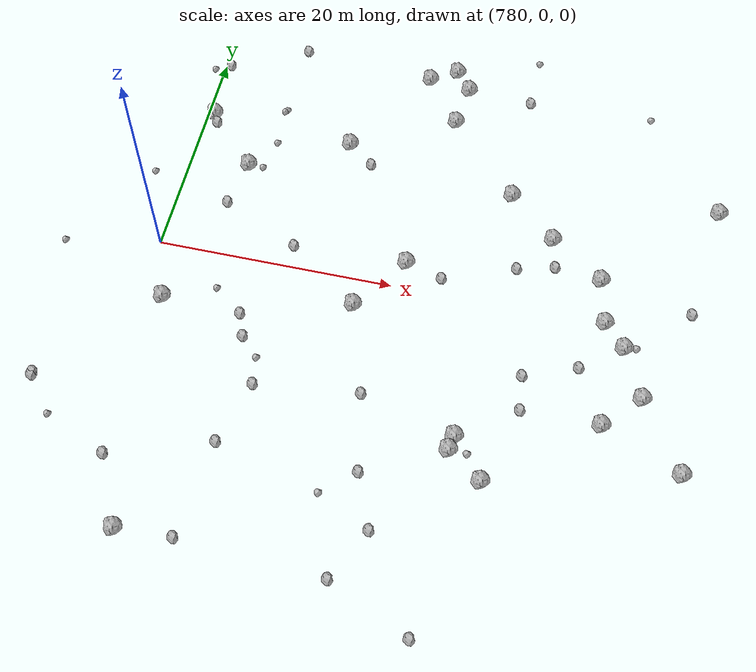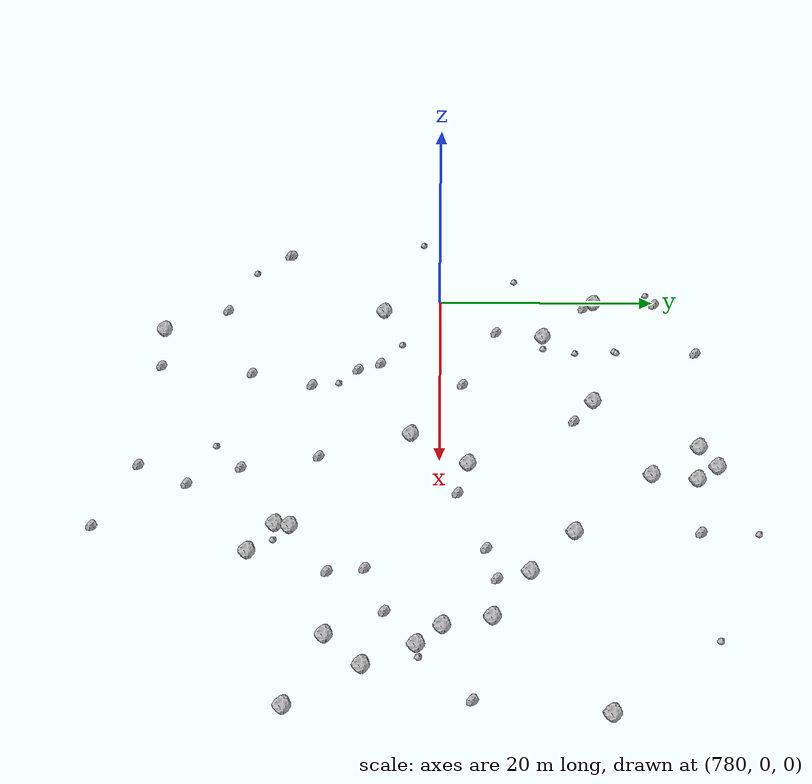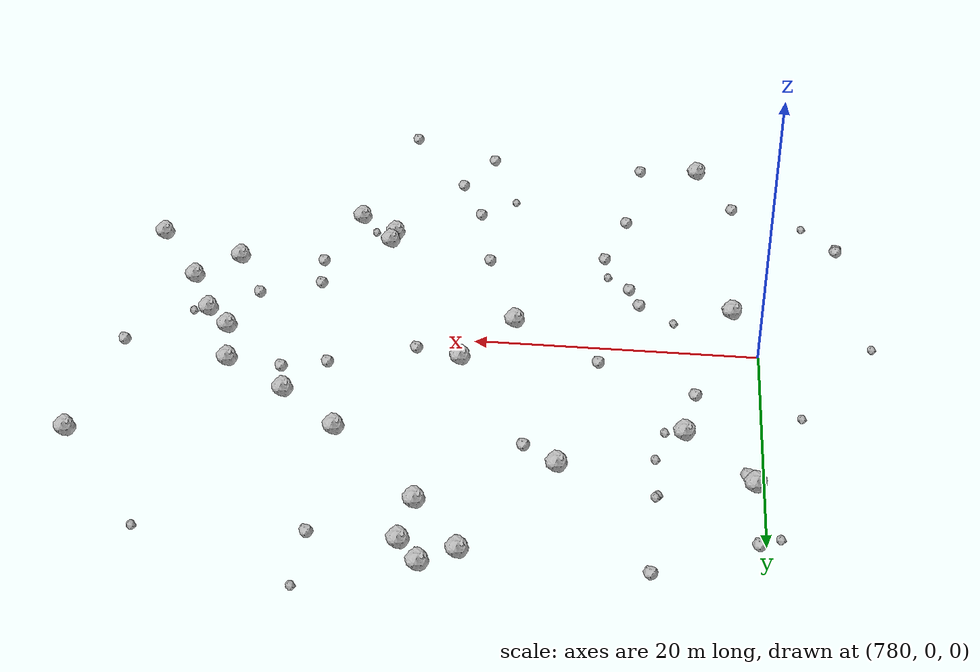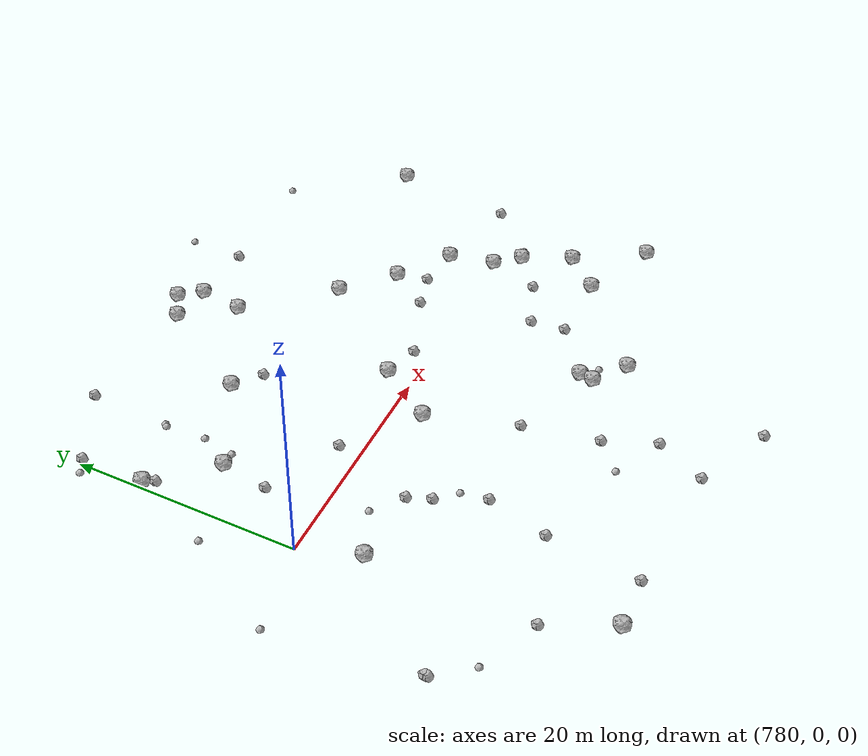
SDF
<sdf version="1.6">
 <world name="default">
  <include><uri>model://sun</uri></include>
  <model name="rock1_20_4">
   <include><uri>model://rock1</uri><pose>807.8251885628258 -12.503288451490942 0.5 0 0 0</pose></include>
  </model>
  <model name="rock1_20_5">
   <include><uri>model://rock1</uri><pose>798.7308575047086 22.42520328694191 0.5 0 0 0</pose></include>
  </model>
  <model name="rock1_20_6">
   <include><uri>model://rock1</uri><pose>800.7836327594883 2.401359715254671 0.5 0 0 0</pose></include>
  </model>
  <model name="rock1_20_7">
   <include><uri>model://rock1</uri><pose>812.4145815715328 7.360650762690717 0.5 0 0 0</pose></include>
  </model>
  <model name="rock1_20_8">
   <include><uri>model://rock1</uri><pose>810.5118588144919 -15.808117047848278 0.5 0 0 0</pose></include>
  </model>
  <model name="rock1_20_9">
   <include><uri>model://rock1</uri><pose>821.662245598696 -6.081286089101457 0.5 0 0 0</pose></include>
  </model>
  <model name="rock1_20_10">
   <include><uri>model://rock1</uri><pose>825.4167378654381 -11.93931517856521 0.5 0 0 0</pose></include>
  </model>
  <model name="rock1_20_11">
   <include><uri>model://rock1</uri><pose>802.4160137692612 21.932943546412417 0.5 0 0 0</pose></include>
  </model>
  <model name="rock1_20_12">
   <include><uri>model://rock1</uri><pose>784.4384957043653 -25.48952887905652 0.5 0 0 0</pose></include>
  </model>
  <model name="rock1_20_13">
   <include><uri>model://rock1</uri><pose>825.8917752590783 13.112850134659404 0.5 0 0 0</pose></include>
  </model>
  <model name="rock1_20_14">
   <include><uri>model://rock1</uri><pose>808.2465812958935 11.161290035560441 0.5 0 0 0</pose></include>
  </model>
  <model name="rock1_20_15">
   <include><uri>model://rock1</uri><pose>801.9447974708867 18.07258438209623 0.5 0 0 0</pose></include>
  </model>
  <model name="rock1_20_16">
   <include><uri>model://rock1</uri><pose>781.8170530121807 -5.217827327383141 0.5 0 0 0</pose></include>
  </model>
  <model name="rock1_20_17">
   <include><uri>model://rock1</uri><pose>816.9624875694711 4.195301404812504 0.5 0 0 0</pose></include>
  </model>
  <model name="rock1_20_18">
   <include><uri>model://rock1</uri><pose>793.2929757553794 13.581934600600917 0.5 0 0 0</pose></include>
  </model>
  <model name="rock1_20_19">
   <include><uri>model://rock1</uri><pose>800.9805422048406 23.788795342171426 0.5 0 0 0</pose></include>
  </model>
  <model name="rock1_20_20">
   <include><uri>model://rock1</uri><pose>797.3807596318325 -2.5631635274295412 0.5 0 0 0</pose></include>
  </model>
  <model name="rock1_20_21">
   <include><uri>model://rock1</uri><pose>780.5779361961754 14.334694959827232 0.5 0 0 0</pose></include>
  </model>
  <model name="rock1_20_22">
   <include><uri>model://rock1</uri><pose>817.8434681080306 0.18753175339897155 0.5 0 0 0</pose></include>
  </model>
  <model name="rock1_20_23">
   <include><uri>model://rock1</uri><pose>818.8284339953528 -9.091802010078538 0.5 0 0 0</pose></include>
  </model>
  <model name="rock1_20_24">
   <include><uri>model://rock1</uri><pose>819.6672748777657 -1.847038062434148 0.5 0 0 0</pose></include>
  </model>
  <model name="rock1_20_25">
   <include><uri>model://rock1</uri><pose>807.612204053263 -13.738059568396128 0.5 0 0 0</pose></include>
  </model>
  <model name="rock1_20_26">
   <include><uri>model://rock1</uri><pose>785.1156569726295 9.423704618615773 0.5 0 0 0</pose></include>
  </model>
  <model name="rock2_20_0">
   <include><uri>model://rock2</uri><pose>799.888454397697 -10.431902795799623 0.3 0 0 0</pose></include>
  </model>
  <model name="rock2_20_1">
   <include><uri>model://rock2</uri><pose>812.399620539941 -9.144461059123731 0.3 0 0 0</pose></include>
  </model>
  <model name="rock2_20_2">
   <include><uri>model://rock2</uri><pose>795.5725972017725 11.794705180356985 0.3 0 0 0</pose></include>
  </model>
  <model name="rock2_20_3">
   <include><uri>model://rock2</uri><pose>786.9943336211874 23.315562173334826 0.3 0 0 0</pose></include>
  </model>
  <model name="rock2_20_4">
   <include><uri>model://rock2</uri><pose>801.2329669890006 -17.05478860356116 0.3 0 0 0</pose></include>
  </model>
  <model name="rock2_20_5">
   <include><uri>model://rock2</uri><pose>773.8324173546832 -14.509127628337673 0.3 0 0 0</pose></include>
  </model>
  <model name="rock2_20_6">
   <include><uri>model://rock2</uri><pose>807.7899425317709 -28.936512403301393 0.3 0 0 0</pose></include>
  </model>
  <model name="rock2_20_7">
   <include><uri>model://rock2</uri><pose>773.8476468200394 -14.29245992782451 0.3 0 0 0</pose></include>
  </model>
  <model name="rock2_20_8">
   <include><uri>model://rock2</uri><pose>789.8566754438956 -16.975039109459452 0.3 0 0 0</pose></include>
  </model>
  <model name="rock2_20_9">
   <include><uri>model://rock2</uri><pose>789.3080707803812 -7.402865161779349 0.3 0 0 0</pose></include>
  </model>
  <model name="rock2_20_10">
   <include><uri>model://rock2</uri><pose>803.9481408910341 1.519811779565721 0.3 0 0 0</pose></include>
  </model>
  <model name="rock2_20_11">
   <include><uri>model://rock2</uri><pose>788.5128829473472 -5.399224975443218 0.3 0 0 0</pose></include>
  </model>
  <model name="rock2_20_12">
   <include><uri>model://rock2</uri><pose>824.6834576789532 2.546894194862041 0.3 0 0 0</pose></include>
  </model>
  <model name="rock2_20_13">
   <include><uri>model://rock2</uri><pose>788.982206421549 -25.25063319072987 0.3 0 0 0</pose></include>
  </model>
  <model name="rock2_20_14">
   <include><uri>model://rock2</uri><pose>816.362710964351 -4.381082949793111 0.3 0 0 0</pose></include>
  </model>
  <model name="rock2_20_15">
   <include><uri>model://rock2</uri><pose>784.393117188753 5.171027778045186 0.3 0 0 0</pose></include>
  </model>
  <model name="rock2_20_16">
   <include><uri>model://rock2</uri><pose>791.279127490869 -11.47445994015565 0.3 0 0 0</pose></include>
  </model>
  <model name="rock2_20_17">
   <include><uri>model://rock2</uri><pose>780.4555965024755 20.107381782876068 0.3 0 0 0</pose></include>
  </model>
  <model name="rock2_20_18">
   <include><uri>model://rock2</uri><pose>803.097387173769 -21.511990344492276 0.3 0 0 0</pose></include>
  </model>
  <model name="rock2_20_19">
   <include><uri>model://rock2</uri><pose>813.0231605057596 4.668294609932012 0.3 0 0 0</pose></include>
  </model>
  <model name="rock2_20_20">
   <include><uri>model://rock2</uri><pose>812.0453699260688 -6.086982242484904 0.3 0 0 0</pose></include>
  </model>
  <model name="rock2_20_21">
   <include><uri>model://rock2</uri><pose>808.1139779985945 21.689423758753605 0.3 0 0 0</pose></include>
  </model>
  <model name="rock2_20_22">
   <include><uri>model://rock2</uri><pose>800.9974754107693 -25.874321980854987 0.3 0 0 0</pose></include>
  </model>
  <model name="rock2_20_23">
   <include><uri>model://rock2</uri><pose>791.1335684800159 2.0299413822101613 0.3 0 0 0</pose></include>
  </model>
  <model name="rock2_20_24">
   <include><uri>model://rock2</uri><pose>781.0520422535479 13.414782419594559 0.3 0 0 0</pose></include>
  </model>
  <model name="rock2_20_25">
   <include><uri>model://rock2</uri><pose>781.6338457244238 -19.826463146609992 0.3 0 0 0</pose></include>
  </model>
  <model name="rock2_20_26">
   <include><uri>model://rock2</uri><pose>809.9005998628655 3.844994199778853 0.3 0 0 0</pose></include>
  </model>
  <model name="rock3_20_0">
   <include><uri>model://rock3</uri><pose>798.6450013124065 -19.40694622628037 0.2 0 0 0</pose></include>
  </model>
  <model name="rock3_20_1">
   <include><uri>model://rock3</uri><pose>772.0584262014554 -1.5833003590637134 0.2 0 0 0</pose></include>
  </model>
  <model name="rock3_20_2">
   <include><uri>model://rock3</uri><pose>776.2613777296582 -17.551990136081404 0.2 0 0 0</pose></include>
  </model>
  <model name="rock3_20_3">
   <include><uri>model://rock3</uri><pose>779.1007210455629 19.388966518892225 0.2 0 0 0</pose></include>
  </model>
  <model name="rock3_20_4">
   <include><uri>model://rock3</uri><pose>820.6457914562861 -1.6566797832168803 0.2 0 0 0</pose></include>
  </model>
  <model name="rock3_20_5">
   <include><uri>model://rock3</uri><pose>809.055018265905 -13.782752810927096 0.2 0 0 0</pose></include>
  </model>
  <model name="rock3_20_6">
   <include><uri>model://rock3</uri><pose>785.9513273446986 -3.4651889502074305 0.2 0 0 0</pose></include>
  </model>
  <model name="rock3_20_7">
   <include><uri>model://rock3</uri><pose>786.8261629084903 16.11126112940368 0.2 0 0 0</pose></include>
  </model>
  <model name="rock3_20_8">
   <include><uri>model://rock3</uri><pose>786.909910823008 12.321768801187098 0.2 0 0 0</pose></include>
  </model>
  <model name="rock3_20_9">
   <include><uri>model://rock3</uri><pose>790.9013666991661 -9.114503602490963 0.2 0 0 0</pose></include>
  </model>
  <model name="rock3_20_10">
   <include><uri>model://rock3</uri><pose>786.6609187357279 15.92056102725271 0.2 0 0 0</pose></include>
  </model>
  <model name="rock3_20_11">
   <include><uri>model://rock3</uri><pose>786.3647778679252 9.431186542954933 0.2 0 0 0</pose></include>
  </model>
  <model name="rock3_20_12">
   <include><uri>model://rock3</uri><pose>777.2944289135706 7.008772326641122 0.2 0 0 0</pose></include>
  </model>
  <model name="rock3_20_13">
   <include><uri>model://rock3</uri><pose>818.9501057267336 22.081808825858225 0.2 0 0 0</pose></include>
  </model>
  <model name="rock3_20_14">
   <include><uri>model://rock3</uri><pose>808.1419818248363 26.465548316546226 0.2 0 0 0</pose></include>
  </model>
 </world>
</sdf>
